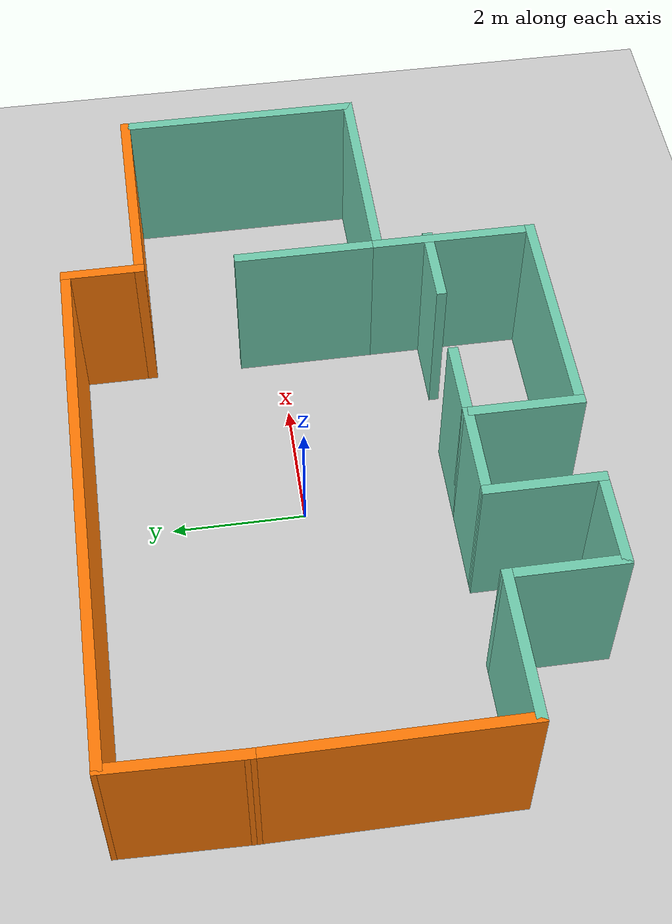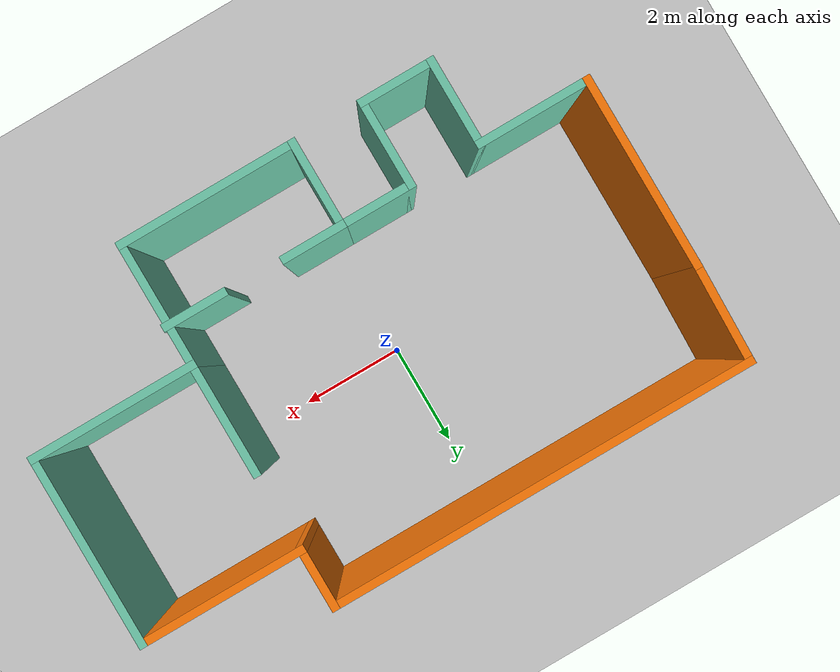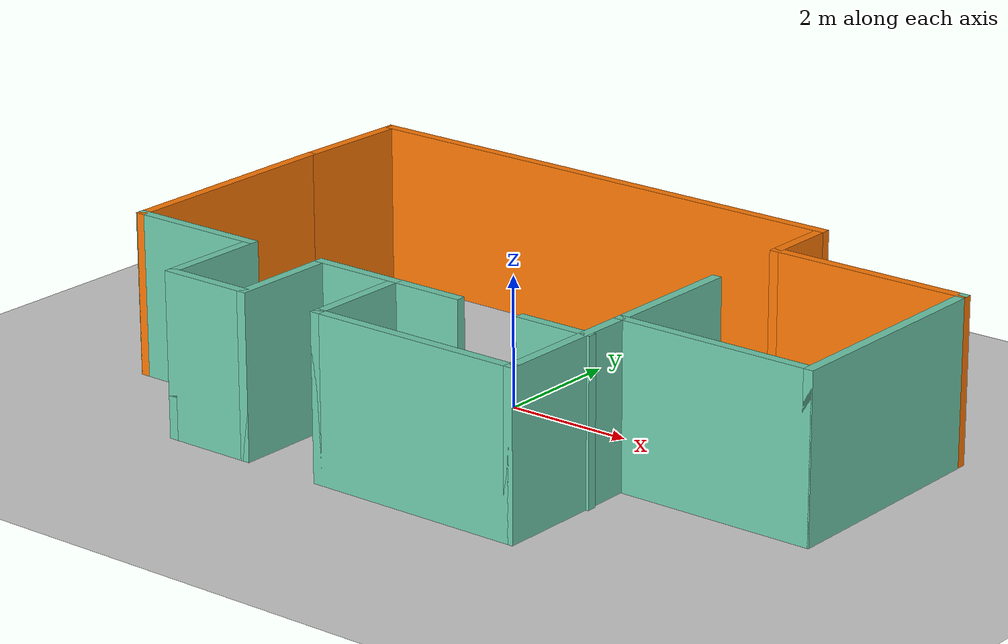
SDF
<sdf version="1.7">
 <world name="default">
  <model name="ground_plane">
   <static>1</static>
   <link name="link">
    <collision name="collision">
     <geometry><plane><normal>0 0 1</normal><size>100 100</size></plane></geometry>
     <surface>
      <contact><collide_bitmask>65535</collide_bitmask></contact>
      <friction><ode><mu>100</mu><mu2>50</mu2></ode></friction>
     </surface>
    </collision>
    <visual name="visual">
     <cast_shadows>0</cast_shadows>
     <geometry><plane><normal>0 0 1</normal><size>100 100</size></plane></geometry>
     <material>
      <script><uri>file://media/materials/scripts/gazebo.material</uri><name>Gazebo/Grey</name></script>
     </material>
    </visual>
   </link>
  </model>
  <light name="sun" type="directional">
   <pose>0 0 10 0 -0 0</pose>
   <diffuse>0.8 0.8 0.8 1</diffuse>
   <specular>0.2 0.2 0.2 1</specular>
   <attenuation>
    <range>1000</range>
    <constant>0.9</constant>
    <linear>0.01</linear>
    <quadratic>0.001</quadratic>
   </attenuation>
   <direction>-0.5 0.1 -0.9</direction>
   <spot><inner_angle>0</inner_angle><outer_angle>0</outer_angle><falloff>0</falloff></spot>
  </light>
  <gravity>0 0 -9.8</gravity>
  <magnetic_field>6e-06 2.3e-05 -4.2e-05</magnetic_field>
  <atmosphere type="adiabatic"/>
  <physics name="default_physics" default="0" type="ode">
   <max_step_size>0.001</max_step_size>
   <real_time_factor>1</real_time_factor>
   <real_time_update_rate>1000</real_time_update_rate>
  </physics>
  <scene><ambient>0.4 0.4 0.4 1</ambient><background>0.7 0.7 0.7 1</background><shadows>1</shadows></scene>
  <spherical_coordinates>
   <surface_model>EARTH_WGS84</surface_model>
   <latitude_deg>0</latitude_deg>
   <longitude_deg>0</longitude_deg>
   <elevation>0</elevation>
   <heading_deg>0</heading_deg>
  </spherical_coordinates>
  <model name="environment">
   <pose>0.5715 -0.356155 0 0 -0 0</pose>
   <link name="Wall_1">
    <collision name="Wall_1_Collision">
     <geometry><box><size>3.75 0.15 2.5</size></box></geometry>
     <pose>0 0 1.25 0 -0 0</pose>
    </collision>
    <visual name="Wall_1_Visual">
     <pose>0 0 1.25 0 -0 0</pose>
     <geometry><box><size>3.75 0.15 2.5</size></box></geometry>
     <material>
      <script><uri>file://media/materials/scripts/gazebo.material</uri><name>Gazebo/Grey</name></script>
      <ambient>0.996078 0.47451 0.0196078 1</ambient>
     </material>
     <meta><layer>0</layer></meta>
    </visual>
    <pose>-5.624 -0.125999 0 0 0 -1.5708</pose>
   </link>
   <link name="Wall_10">
    <collision name="Wall_10_Collision">
     <geometry><box><size>3.25 0.15 2.5</size></box></geometry>
     <pose>0 0 1.25 0 -0 0</pose>
    </collision>
    <visual name="Wall_10_Visual">
     <pose>0 0 1.25 0 -0 0</pose>
     <geometry><box><size>3.25 0.15 2.5</size></box></geometry>
     <material>
      <script><uri>file://media/materials/scripts/gazebo.material</uri><name>Gazebo/Grey</name></script>
      <ambient>0.435294 0.796078 0.67451 1</ambient>
     </material>
     <meta><layer>0</layer></meta>
    </visual>
    <pose>4.076 -1.176 0 0 -0 0</pose>
   </link>
   <link name="Wall_11">
    <collision name="Wall_11_Collision">
     <geometry><box><size>3.75 0.15 2.5</size></box></geometry>
     <pose>0 0 1.25 0 -0 0</pose>
    </collision>
    <visual name="Wall_11_Visual">
     <pose>0 0 1.25 0 -0 0</pose>
     <geometry><box><size>3.75 0.15 2.5</size></box></geometry>
     <material>
      <script><uri>file://media/materials/scripts/gazebo.material</uri><name>Gazebo/Grey</name></script>
      <ambient>0.435294 0.796078 0.67451 1</ambient>
     </material>
     <meta><layer>0</layer></meta>
    </visual>
    <pose>5.626 0.624001 0 0 -0 1.5708</pose>
   </link>
   <link name="Wall_12">
    <collision name="Wall_12_Collision">
     <geometry><box><size>3.25 0.15 2.5</size></box></geometry>
     <pose>0 0 1.25 0 -0 0</pose>
    </collision>
    <visual name="Wall_12_Visual">
     <pose>0 0 1.25 0 -0 0</pose>
     <geometry><box><size>3.25 0.15 2.5</size></box></geometry>
     <material>
      <script><uri>file://media/materials/scripts/gazebo.material</uri><name>Gazebo/Grey</name></script>
      <ambient>0.996078 0.47451 0.0196078 1</ambient>
     </material>
     <meta><layer>0</layer></meta>
    </visual>
    <pose>4.076 2.424 0 0 -0 3.14159</pose>
   </link>
   <link name="Wall_14">
    <collision name="Wall_14_Collision">
     <geometry><box><size>1.25 0.15 2.5</size></box></geometry>
     <pose>0 0 1.25 0 -0 0</pose>
    </collision>
    <visual name="Wall_14_Visual">
     <pose>0 0 1.25 0 -0 0</pose>
     <geometry><box><size>1.25 0.15 2.5</size></box></geometry>
     <material>
      <script><uri>file://media/materials/scripts/gazebo.material</uri><name>Gazebo/Grey</name></script>
      <ambient>0.996078 0.47451 0.0196078 1</ambient>
     </material>
     <meta><layer>0</layer></meta>
    </visual>
    <pose>2.526 2.974 0 0 -0 1.5708</pose>
   </link>
   <link name="Wall_15">
    <collision name="Wall_15_Collision">
     <geometry><box><size>8.25 0.15 2.5</size></box></geometry>
     <pose>0 0 1.25 0 -0 0</pose>
    </collision>
    <visual name="Wall_15_Visual">
     <pose>0 0 1.25 0 -0 0</pose>
     <geometry><box><size>8.25 0.15 2.5</size></box></geometry>
     <material>
      <script><uri>file://media/materials/scripts/gazebo.material</uri><name>Gazebo/Grey</name></script>
      <ambient>0.996078 0.47451 0.0196078 1</ambient>
     </material>
     <meta><layer>0</layer></meta>
    </visual>
    <pose>-1.524 3.524 0 0 -0 3.14159</pose>
   </link>
   <link name="Wall_16">
    <collision name="Wall_16_Collision">
     <geometry><box><size>2.00068 0.15 2.5</size></box></geometry>
     <pose>0 0 1.25 0 -0 0</pose>
    </collision>
    <visual name="Wall_16_Visual">
     <pose>0 0 1.25 0 -0 0</pose>
     <geometry><box><size>2.00068 0.15 2.5</size></box></geometry>
     <material>
      <script><uri>file://media/materials/scripts/gazebo.material</uri><name>Gazebo/Grey</name></script>
      <ambient>0.996078 0.47451 0.0196078 1</ambient>
     </material>
     <meta><layer>0</layer></meta>
    </visual>
    <pose>-5.599 2.599 0 0 0 -1.59782</pose>
   </link>
   <link name="Wall_18">
    <collision name="Wall_18_Collision">
     <geometry><box><size>1.25 0.15 2.5</size></box></geometry>
     <pose>0 0 1.25 0 -0 0</pose>
    </collision>
    <visual name="Wall_18_Visual">
     <pose>0 0 1.25 0 -0 0</pose>
     <geometry><box><size>1.25 0.15 2.5</size></box></geometry>
     <material>
      <script><uri>file://media/materials/scripts/gazebo.material</uri><name>Gazebo/Grey</name></script>
      <ambient>0.435294 0.796078 0.67451 1</ambient>
     </material>
     <meta><layer>0</layer></meta>
    </visual>
    <pose>-0.274001 -1.926 0 0 -0 0</pose>
   </link>
   <link name="Wall_2">
    <collision name="Wall_2_Collision">
     <geometry><box><size>2.25 0.15 2.5</size></box></geometry>
     <pose>0 0 1.25 0 -0 0</pose>
    </collision>
    <visual name="Wall_2_Visual">
     <pose>0 0 1.25 0 -0 0</pose>
     <geometry><box><size>2.25 0.15 2.5</size></box></geometry>
     <material>
      <script><uri>file://media/materials/scripts/gazebo.material</uri><name>Gazebo/Grey</name></script>
      <ambient>0.435294 0.796078 0.67451 1</ambient>
     </material>
     <meta><layer>0</layer></meta>
    </visual>
    <pose>-4.574 -1.926 0 0 -0 0</pose>
   </link>
   <link name="Wall_20">
    <collision name="Wall_20_Collision">
     <geometry><box><size>1.25 0.15 2.5</size></box></geometry>
     <pose>0 0 1.25 0 -0 0</pose>
    </collision>
    <visual name="Wall_20_Visual">
     <pose>0 0 1.25 0 -0 0</pose>
     <geometry><box><size>1.25 0.15 2.5</size></box></geometry>
     <material>
      <script><uri>file://media/materials/scripts/gazebo.material</uri><name>Gazebo/Grey</name></script>
      <ambient>0.435294 0.796078 0.67451 1</ambient>
     </material>
     <meta><layer>0</layer></meta>
    </visual>
    <pose>2.01717 -1.95726 0 0 -0 3.14159</pose>
   </link>
   <link name="Wall_22">
    <collision name="Wall_22_Collision">
     <geometry><box><size>2.25 0.15 2.5</size></box></geometry>
     <pose>0 0 1.25 0 -0 0</pose>
    </collision>
    <visual name="Wall_22_Visual">
     <pose>0 0 1.25 0 -0 0</pose>
     <geometry><box><size>2.25 0.15 2.5</size></box></geometry>
     <material>
      <script><uri>file://media/materials/scripts/gazebo.material</uri><name>Gazebo/Grey</name></script>
      <ambient>0.435294 0.796078 0.67451 1</ambient>
     </material>
     <meta><layer>0</layer></meta>
    </visual>
    <pose>2.526 -0.125999 0 0 -0 1.5708</pose>
   </link>
   <link name="Wall_3">
    <collision name="Wall_3_Collision">
     <geometry><box><size>1.75 0.15 2.5</size></box></geometry>
     <pose>0 0 1.25 0 -0 0</pose>
    </collision>
    <visual name="Wall_3_Visual">
     <pose>0 0 1.25 0 -0 0</pose>
     <geometry><box><size>1.75 0.15 2.5</size></box></geometry>
     <material>
      <script><uri>file://media/materials/scripts/gazebo.material</uri><name>Gazebo/Grey</name></script>
      <ambient>0.435294 0.796078 0.67451 1</ambient>
     </material>
     <meta><layer>0</layer></meta>
    </visual>
    <pose>-3.524 -2.726 0 0 0 -1.5708</pose>
   </link>
   <link name="Wall_4">
    <collision name="Wall_4_Collision">
     <geometry><box><size>1.5 0.15 2.5</size></box></geometry>
     <pose>0 0 1.25 0 -0 0</pose>
    </collision>
    <visual name="Wall_4_Visual">
     <pose>0 0 1.25 0 -0 0</pose>
     <geometry><box><size>1.5 0.15 2.5</size></box></geometry>
     <material>
      <script><uri>file://media/materials/scripts/gazebo.material</uri><name>Gazebo/Grey</name></script>
      <ambient>0.435294 0.796078 0.67451 1</ambient>
     </material>
     <meta><layer>0</layer></meta>
    </visual>
    <pose>-2.849 -3.526 0 0 -0 0</pose>
   </link>
   <link name="Wall_5">
    <collision name="Wall_5_Collision">
     <geometry><box><size>1.75 0.15 2.5</size></box></geometry>
     <pose>0 0 1.25 0 -0 0</pose>
    </collision>
    <visual name="Wall_5_Visual">
     <pose>0 0 1.25 0 -0 0</pose>
     <geometry><box><size>1.75 0.15 2.5</size></box></geometry>
     <material>
      <script><uri>file://media/materials/scripts/gazebo.material</uri><name>Gazebo/Grey</name></script>
      <ambient>0.435294 0.796078 0.67451 1</ambient>
     </material>
     <meta><layer>0</layer></meta>
    </visual>
    <pose>-2.174 -2.726 0 0 -0 1.5708</pose>
   </link>
   <link name="Wall_6">
    <collision name="Wall_6_Collision">
     <geometry><box><size>1.5 0.15 2.5</size></box></geometry>
     <pose>0 0 1.25 0 -0 0</pose>
    </collision>
    <visual name="Wall_6_Visual">
     <pose>0 0 1.25 0 -0 0</pose>
     <geometry><box><size>1.5 0.15 2.5</size></box></geometry>
     <material>
      <script><uri>file://media/materials/scripts/gazebo.material</uri><name>Gazebo/Grey</name></script>
      <ambient>0.435294 0.796078 0.67451 1</ambient>
     </material>
     <meta><layer>0</layer></meta>
    </visual>
    <pose>-1.499 -1.926 0 0 -0 0</pose>
   </link>
   <link name="Wall_7">
    <collision name="Wall_7_Collision">
     <geometry><box><size>1.75 0.15 2.5</size></box></geometry>
     <pose>0 0 1.25 0 -0 0</pose>
    </collision>
    <visual name="Wall_7_Visual">
     <pose>0 0 1.25 0 -0 0</pose>
     <geometry><box><size>1.75 0.15 2.5</size></box></geometry>
     <material>
      <script><uri>file://media/materials/scripts/gazebo.material</uri><name>Gazebo/Grey</name></script>
      <ambient>0.435294 0.796078 0.67451 1</ambient>
     </material>
     <meta><layer>0</layer></meta>
    </visual>
    <pose>-0.824001 -2.726 0 0 0 -1.5708</pose>
   </link>
   <link name="Wall_8">
    <collision name="Wall_8_Collision">
     <geometry><box><size>3.5 0.15 2.5</size></box></geometry>
     <pose>0 0 1.25 0 -0 0</pose>
    </collision>
    <visual name="Wall_8_Visual">
     <pose>0 0 1.25 0 -0 0</pose>
     <geometry><box><size>3.5 0.15 2.5</size></box></geometry>
     <material>
      <script><uri>file://media/materials/scripts/gazebo.material</uri><name>Gazebo/Grey</name></script>
      <ambient>0.435294 0.796078 0.67451 1</ambient>
     </material>
     <meta><layer>0</layer></meta>
    </visual>
    <pose>0.850999 -3.526 0 0 -0 0</pose>
   </link>
   <link name="Wall_9">
    <collision name="Wall_9_Collision">
     <geometry><box><size>2.5 0.15 2.5</size></box></geometry>
     <pose>0 0 1.25 0 -0 0</pose>
    </collision>
    <visual name="Wall_9_Visual">
     <pose>0 0 1.25 0 -0 0</pose>
     <geometry><box><size>2.5 0.15 2.5</size></box></geometry>
     <material>
      <script><uri>file://media/materials/scripts/gazebo.material</uri><name>Gazebo/Grey</name></script>
      <ambient>0.435294 0.796078 0.67451 1</ambient>
     </material>
     <meta><layer>0</layer></meta>
    </visual>
    <pose>2.526 -2.351 0 0 -0 1.5708</pose>
   </link>
   <static>1</static>
  </model>
 </world>
</sdf>
